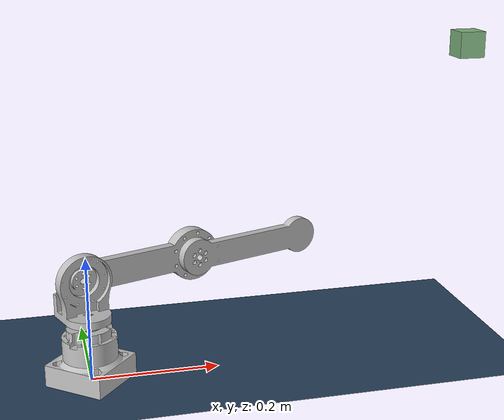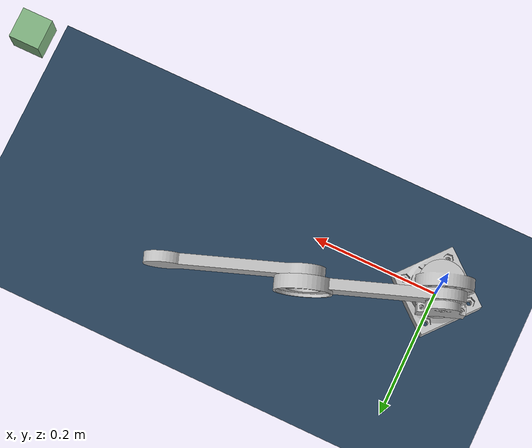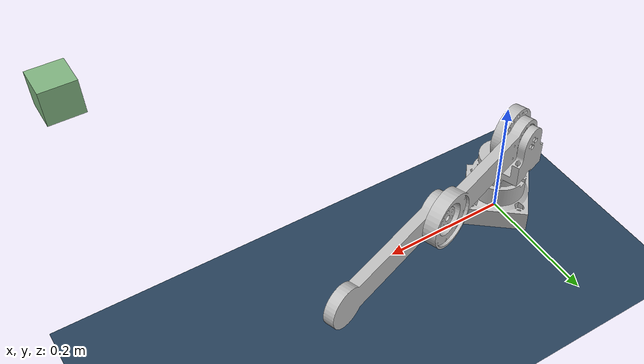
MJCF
<mujoco model="tidybot scene">
  <include file="arm.xml"/>

  <statistic center="0.25 0 0.6" extent="1.0" meansize="0.05"/>

  <visual>
    <headlight diffuse="0.6 0.6 0.6" ambient="0.1 0.1 0.1" specular="0 0 0"/>
    <rgba haze="0.15 0.25 0.35 1"/>
    <global azimuth="120" elevation="-20"/>
  </visual>

  <asset>
    <texture type="skybox" builtin="gradient" rgb1="0.3 0.5 0.7" rgb2="0 0 0" width="512" height="3072"/>
    <texture type="2d" name="groundplane" builtin="checker" mark="edge" rgb1="0.2 0.3 0.4" rgb2="0.1 0.2 0.3"
      markrgb="0.8 0.8 0.8" width="300" height="300"/>
    <material name="groundplane" texture="groundplane" texuniform="true" texrepeat="5 5"/>
  </asset>

  <worldbody>
    <light pos="0 0 1.5" directional="true"/>
    <geom name="floor" size="0 0 0.05" type="plane" material="groundplane"/>
    <body name="cube" pos="0.6 0 0.5">
      <freejoint/>
      <geom type="box" size="0.02 0.02 0.02" rgba=".5 .7 .5 1" mass="0.1"/>
    </body>
  </worldbody>
</mujoco>

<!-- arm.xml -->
<mujoco model="arm">
  <compiler angle="degree" meshdir="./assets"/>

  <option integrator="implicitfast"/>
  <option cone="elliptic" impratio="10"/>

  <default>
    <default class="arm">
      <default class="arm/visual">
        <geom type="mesh" contype="0" conaffinity="0" group="2" rgba="0.75294 0.75294 0.75294 1"/>
      </default>
      <default class="arm/collision">
        <geom type="mesh" group="3"/>
      </default>
    </default>
    <site size="0.001" rgba="0.5 0.5 0.5 0.3" group="4"/>
  </default>

  <asset>
    <mesh name="arm/base_link" file="base_link.STL"/>
    <mesh name="arm/link1" file="link1.STL"/>
    <mesh name="arm/link2" file="link2.STL"/>
    <mesh name="arm/link3" file="link3.STL"/>
  </asset>

  <worldbody>
    <body name="base_link" pos="0 0 0">
        <geom class="arm/visual" mesh="arm/base_link"/>
        <geom class="arm/collision" mesh="arm/base_link"/>
        <!-- link1 -->
        <body name="link1" pos="0 0 0.067">
            <joint name="joint1" type="hinge" axis="0 0 1" damping="0.0"/>
            <geom class="arm/visual" mesh="arm/link1"/>
            <geom class="arm/collision" mesh="arm/link1"/>
            <!-- link2 -->
            <body name="link2" pos="-0.0041 0.0113 0.093" euler="-90 -20 0">
                <joint name="joint2" type="hinge" axis="0 0 1" damping="0.0"/>
                <geom class="arm/visual" mesh="arm/link2"/>
                <geom class="arm/collision" mesh="arm/link2"/>
                <!-- link3 -->
                <body name="link3" pos="0.2 0 0.019" euler="0 0 0">
                    <joint name="joint3" type="hinge" axis="0 0 1" damping="0.0"/>
                    <geom class="arm/visual" mesh="arm/link3"/>
                    <geom class="arm/collision" mesh="arm/link3"/>
                </body>
            </body>
        </body>
    </body>
  </worldbody>

  <actuator>
    <motor name="motor1" joint="joint1" gear="1" ctrlrange="-0 0"/>
    <motor name="motor2" joint="joint2" gear="1" ctrlrange="-0 0"/>
    <motor name="motor3" joint="joint3" gear="1" ctrlrange="-0 0"/>
  </actuator>
</mujoco>
